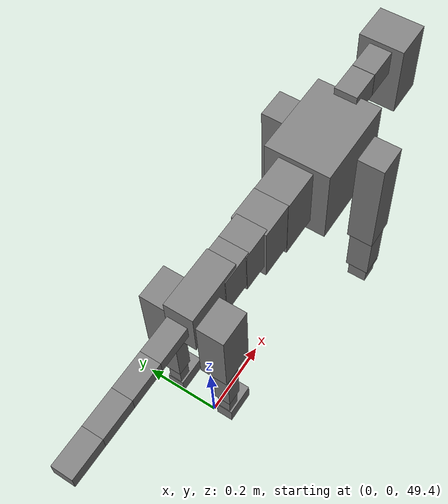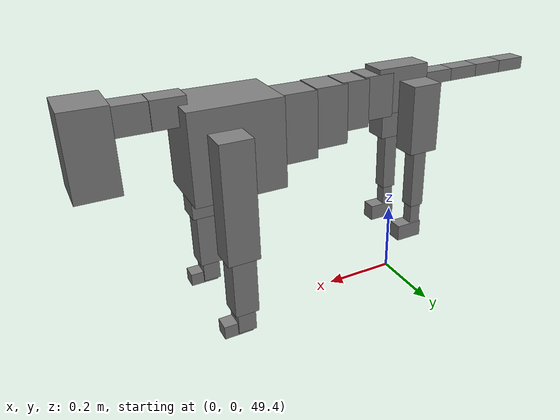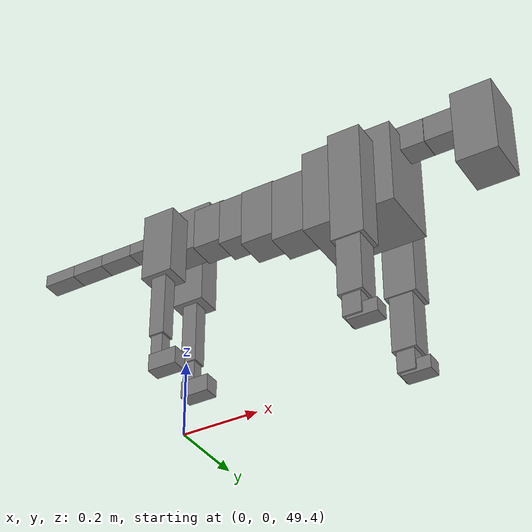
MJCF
<mujoco model="dog">

    <default>
        <joint armature="0.02" stiffness="1" damping="0.2" limited="true"/>
        <geom condim="3" friction="1 0.05 0.05" margin="0.01"/>
        <motor ctrllimited="true" ctrlrange="-1.0 1.0" forcelimited="true" gear="50"/>
    </default>

    <compiler inertiafromgeom="true" angle="radian"/>

    <option timestep="0.016" iterations="50" tolerance="1e-10" solver="Newton" jacobian="dense" cone="pyramidal"/>

    <size nconmax="20000" njmax="60000" nstack="5000000"/>
    <visual>
        <map force="0.1" zfar="30"/>
        <rgba haze="0.15 0.25 0.35 1"/>
        <quality shadowsize="2048"/>
        <global offwidth="800" offheight="800"/>
    </visual>

    <asset>
        <texture type="skybox" builtin="gradient" rgb1="0.3 0.5 0.7" rgb2="0 0 0" width="512" height="512"/>
        <texture name="texplane" type="2d" builtin="checker" rgb1=".2 .3 .4" rgb2=".1 0.15 0.2" width="512" height="512"
                 mark="cross" markrgb=".8 .8 .8"/>
        <texture name="texgeom" type="cube" builtin="flat" mark="cross" width="127" height="1278" rgb1="0.8 0.6 0.4"
                 rgb2="0.8 0.6 0.4" markrgb="1 1 1" random="0.01"/>

        <material name="matplane" reflectance="0.3" texture="texplane" texrepeat="1 1" texuniform="true"/>
        <material name="matgeom" texture="texgeom" texuniform="true" rgba="0.8 0.6 .4 1"/>
    </asset>

    <worldbody>
        <geom name="floor" pos="0 0 0" size="0 0 .25" type="plane" material="matplane" condim="3"/>

        <light directional="false" diffuse=".2 .2 .2" specular="0 0 0" pos="0 0 5" dir="0 0 -1" castshadow="false"/>
        <light mode="targetbodycom" target="torso" directional="false" diffuse=".8 .8 .8" specular="0.3 0.3 0.3"
               pos="0 0 4.0" dir="0 0 -1"/>

        <body name="root" pos="0 0 50">
            <freejoint name="root_1"/>
            <geom type="box" pos="0 0 -0.02" size="0.0774  0.0358  0.063" density="2030"/>

            <body name="spine1" pos="0.054 0 0">
                <joint name="spine1_y" axis="0 1 0" range="0 0.7" limited="true"/>
                <geom type="box" pos="0.02375 0 -0.03" size="0.04375  0.0375  0.05985" density="2030"/>

                <body name="spine2" pos="0.0612 0 0">
                    <joint name="spine2_y" axis="0 1 0" range="-0.15 0.15" limited="true"/>
                    <geom type="box" pos="0.03555  0  -0.04" size="0.04055  0.039  0.06615" density="2030"/>

                    <body name="spine3" pos="0.0730 0 0">
                        <joint name="spine3_y" axis="0 1 0" range="-0.15 0.15" limited="true"/>
                        <geom type="box" pos="0.03555  0  -0.057" size="0.04555  0.0445  0.081" density="2030"/>

                        <body name="spine4" pos="0.0780 0 0">
                            <joint name="spine4_y" axis="0 1 0" range="-0.15 0.15" limited="true"/>
                            <geom type="box" pos="0.05265  0  -0.07" size="0.05265  0.045  0.09135" density="2030"/>

                            <body name="torso" pos="0.1082 0 0">
                                <joint name="torso_y" axis="0 1 0" range="-0.15 0.15" limited="true"/>
                                <geom type="box" pos="0.11925  0  -0.085" size="0.11925  0.085  0.11745"
                                      density="2030"/>

                                <body name="neck1" pos="0.2160  0   0.0180">
                                    <joint name="neck1_y" axis="0 1 0" range="-1.2  -1" limited="true"/>
                                    <geom type="box" pos="0.0423  0  0" size="0.0423  0.03  0.036" density="2325"/>

                                    <body name="neck2" pos="0.0853  0  0">
                                        <joint name="neck2_y" axis="0 1 0" range="0.1  0" limited="true"/>
                                        <geom type="box" pos="0.0423  0  0" size="0.0423  0.03  0.036" density="2325"/>

                                        <body name="head" pos="0.0853  0  0">
                                            <joint name="head_y" axis="0 1 0" range="-0.3  -0.2" limited="true"/>
                                            <geom type="box" pos="0.0531  0  -0.055" size="0.0531  0.06  0.1044"
                                                  density="4030"/>

                                        </body>
                                    </body>
                                </body>

                                <body name="front_shoulder" pos="0.156  0   -0.0480">
                                    <joint name="front_shoulder_y" axis="0 1 0" range="-1 1.5" limited="true"/>
                                    <geom type="box" pos="0 0.13 -0.1286" size="0.0416  0.0355  0.1553" density="1158"/>
                                    <geom type="box" pos="0 -0.13 -0.1286" size="0.0416  0.0355  0.1553"
                                          density="1158"/>

                                    <body name="front_elbow" pos="0  0  -0.2572">
                                        <joint name="front_elbow_y" axis="0 1 0" range="-2 0" limited="true"/>
                                        <geom type="box" pos="0 0.13 -0.0888" size="0.0311  0.0318  0.0888"
                                              density="1081"/>
                                        <geom type="box" pos="0 -0.13 -0.0888" size="0.0311  0.0318  0.0888"
                                              density="1081"/>

                                        <body name="front_wrist" pos="0  0  -0.1777">
                                            <joint name="front_wrist_y" axis="0 1 0" range="-0.2 0" limited="true"/>
                                            <geom type="box" pos="0 0.13 -0.0215" size="0.0235  0.0261  0.0347"
                                                  density="1664"/>
                                            <geom type="box" pos="0 -0.13 -0.0215" size="0.0235  0.0261  0.0347"
                                                  density="1664"/>

                                            <body name="front_finger_end" pos="0  0  -0.0430">
                                                <joint name="front_finger_y" axis="0 1 0" range="-0.4 1"
                                                       limited="true"/>
                                                <geom type="box" pos="0.0209  0.13  -0.0027"
                                                      size="0.0383  0.0209  0.0177" density="1515"/>
                                                <geom type="box" pos="0.0209  -0.13  -0.0027"
                                                      size="0.0383  0.0209  0.0177" density="1515"/>

                                            </body>

                                        </body>
                                    </body>
                                </body>

                            </body>
                        </body>
                    </body>
                </body>
            </body>

            <body name="back_hip" pos="-0.03 0 -0.018">
                <joint name="back_hip_y" axis="0 1 0" range="-1.5 0.3" limited="true"/>
                <geom type="box" pos="0 0.07 -0.0729" size="0.0428  0.0335  0.0957" density="1154"/>
                <geom type="box" pos="0 -0.07 -0.0729" size="0.0428  0.0335  0.0957" density="1154"/>

                <body name="back_knee" pos="0  0  -0.1458">
                    <joint name="back_knee_y" axis="0 1 0" range="0 2.8" limited="true"/>
                    <geom type="box" pos="0 0.07 -0.0886" size="0.0203  0.0200  0.1041" density="1227"/>
                    <geom type="box" pos="0 -0.07 -0.0886" size="0.0203  0.0200  0.1041" density="1227"/>

                    <body name="back_ankle" pos="0  0  -0.1772">
                        <joint name="back_ankle_y" axis="0 1 0" range="-2.2 0" limited="true"/>
                        <geom type="box" pos="0 0.07 -0.0425" size="0.0159  0.0159  0.0538" density="1284"/>
                        <geom type="box" pos="0 -0.07 -0.0425" size="0.0159  0.0159  0.0538" density="1284"/>

                        <body name="back_toe_end" pos="0  0  -0.0851">
                            <joint name="back_toe_y" axis="0 1 0" range="-0.4 1" limited="true"/>
                            <geom type="box" pos="0.0207  0.07  -0.0078" size="0.0379  0.0207  0.0228" density="1515"/>
                            <geom type="box" pos="0.0207  -0.07  -0.0078" size="0.0379  0.0207  0.0228" density="1515"/>

                        </body>
                    </body>
                </body>
            </body>

            <body name="tail1" pos="-0.074 0 -0.006">
                <joint name="tail1_y" axis="0 1 0" range="-0.2 0.2" limited="true"/>
                <geom type="box" pos="-0.0536  0  0" size="0.045  0.025  0.0175" density="1587"/>

                <body name="tail2" pos="-0.09 0 0">
                    <joint name="tail2_y" axis="0 1 0" range="-0.2 0.2" limited="true"/>
                    <geom type="box" pos="-0.0536  0  0" size="0.045  0.025  0.0175" density="1587"/>

                    <body name="tail3" pos="-0.09 0 0">
                        <joint name="tail3_y" axis="0 1 0" range="-0.2 0.2" limited="true"/>
                        <geom type="box" pos="-0.0536  0  0" size="0.045  0.025  0.0175" density="1587"/>

                        <body name="tail4" pos="-0.09 0 0">
                            <joint name="tail4_y" axis="0 1 0" range="-0.2 0.2" limited="true"/>
                            <geom type="box" pos="-0.0536  0  0" size="0.045  0.025  0.0175" density="1587"/>

                        </body>
                    </body>
                </body>
            </body>
        </body>
    </worldbody>

    <actuator>
        <motor joint="spine1_y" forcerange="-150 150     "/>
        <motor joint="spine2_y" forcerange="-150 150     "/>
        <motor joint="spine3_y" forcerange="-150 150     "/>
        <motor joint="spine4_y" forcerange="-150 150     "/>
        <motor joint="torso_y" forcerange="-150 150     "/>
        <motor joint="neck1_y" forcerange="-100 100       "/>
        <motor joint="neck2_y" forcerange="-100 100       "/>
        <motor joint="head_y" forcerange="-150 150       "/>
        <motor joint="front_shoulder_y" forcerange="-176.92 159.97"/>
        <motor joint="front_elbow_y" forcerange="-162.34 168.58"/>
        <motor joint="front_wrist_y" forcerange="-89.58 119.33"/>
        <motor joint="front_finger_y" forcerange="-34.56 36.83"/>
        <motor joint="back_hip_y" forcerange="-385.53 261.62"/>
        <motor joint="back_knee_y" forcerange="-235.24 255.53"/>
        <motor joint="back_angle_y" forcerange="-53.37 101.57"/>
        <motor joint="back_toe_y" forcerange="-56.04 29.46"/>
        <motor joint="tail1_y" forcerange="-50 50     "/>
        <motor joint="tail2_y" forcerange="-50 50     "/>
        <motor joint="tail3_y" forcerange="-50 50     "/>
        <motor joint="tail4_y" forcerange="-50 50     "/>
    </actuator>
</mujoco>
